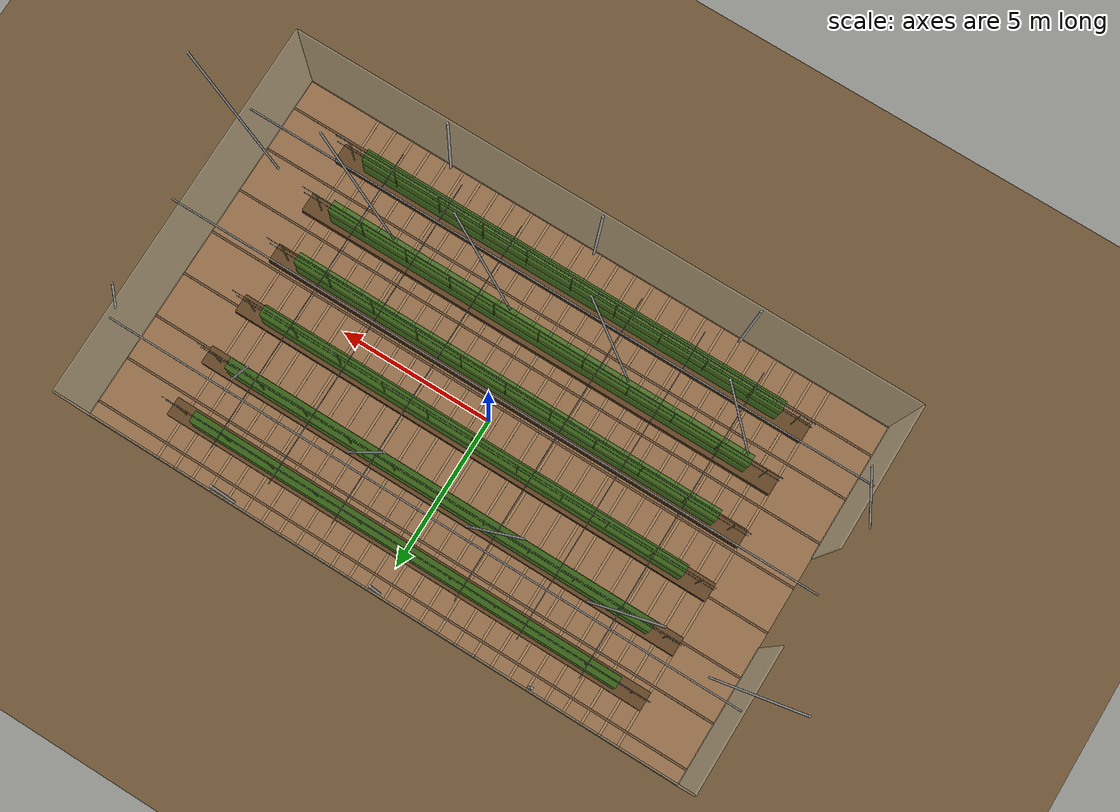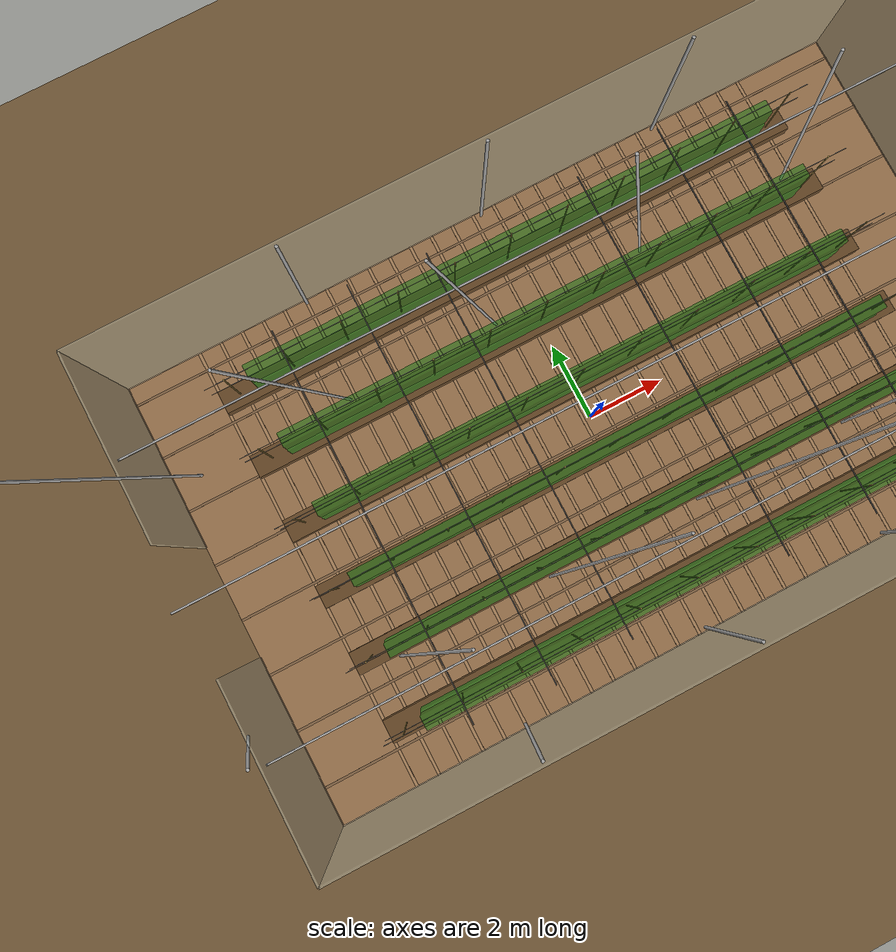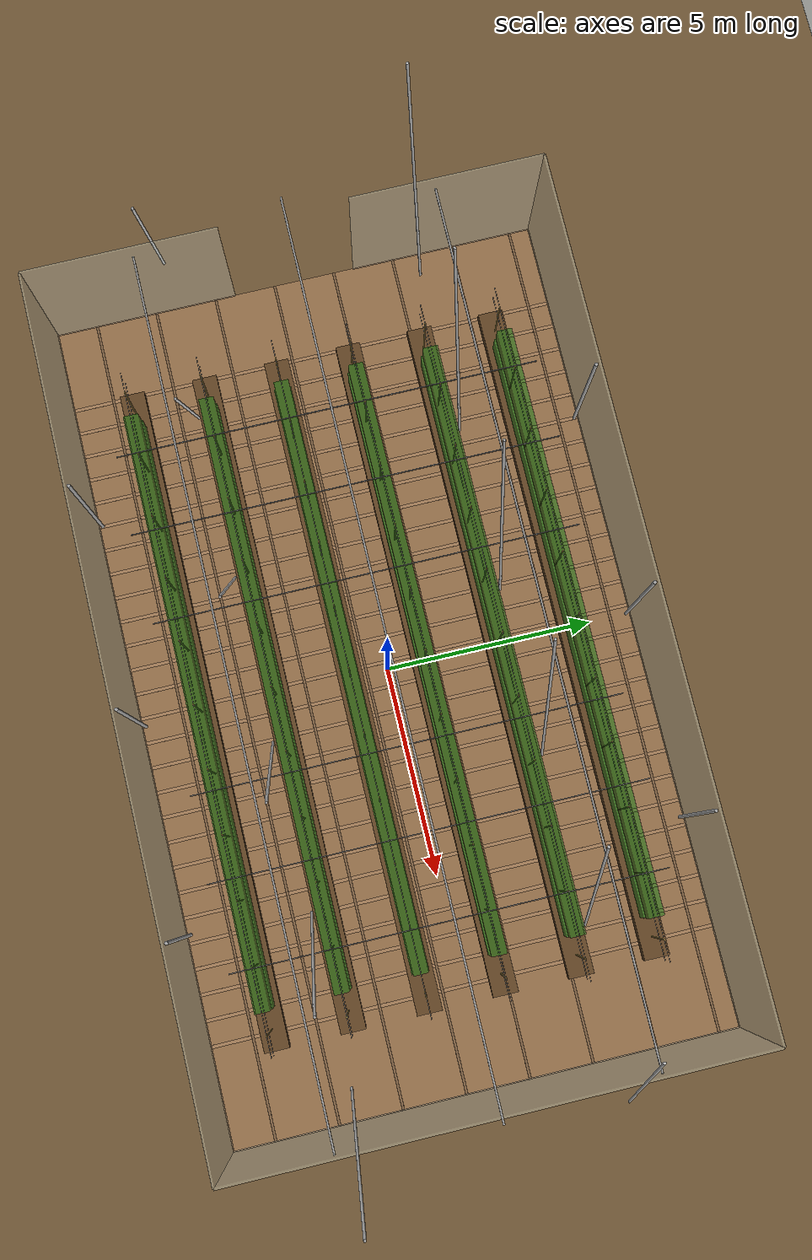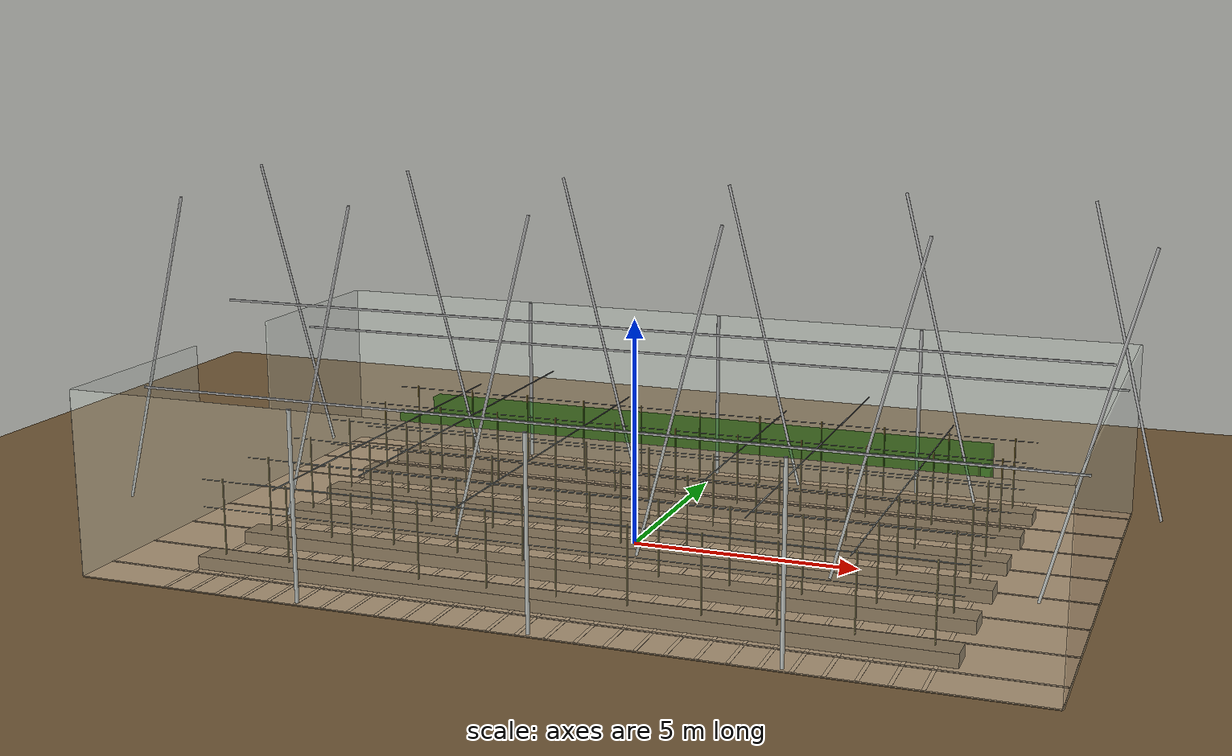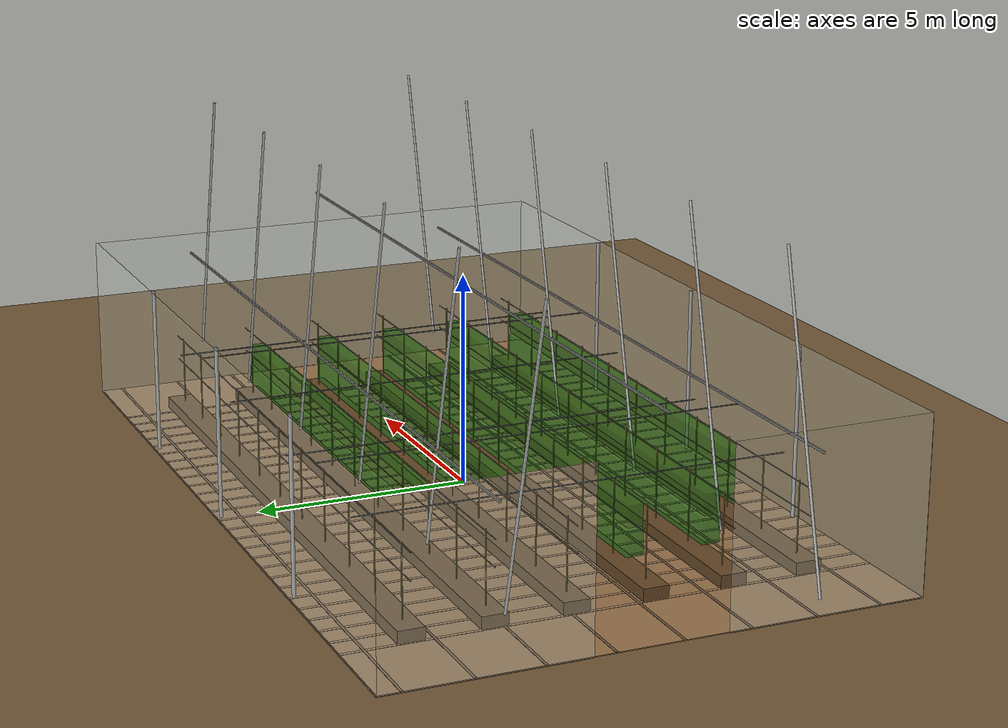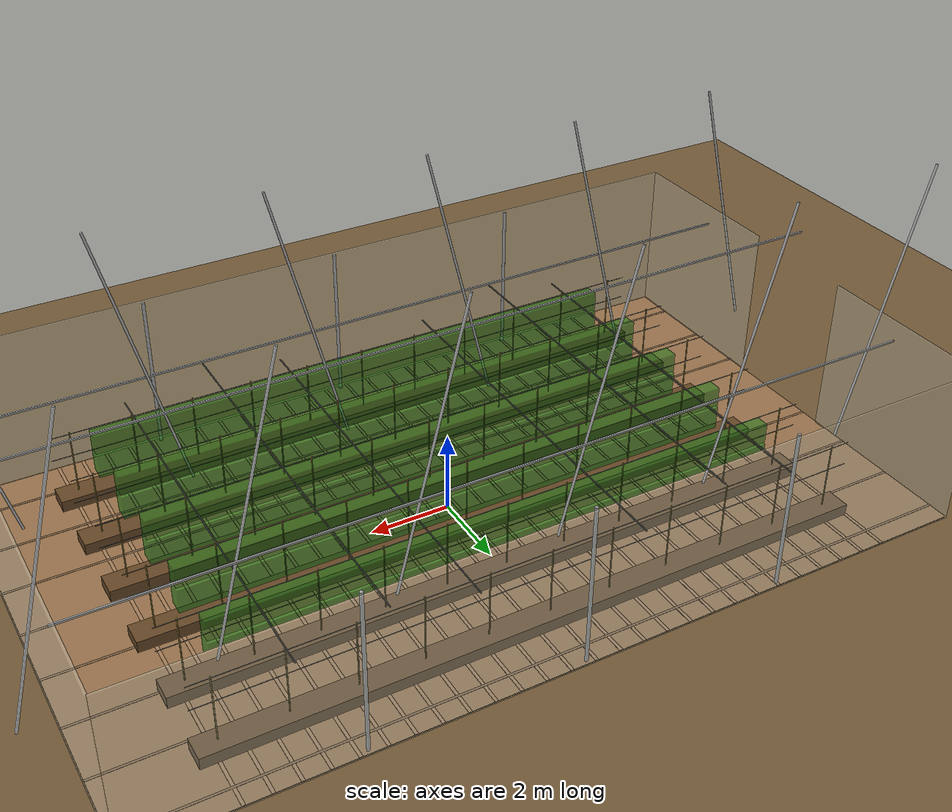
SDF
<?xml version="1.0" ?>
<!--
  黄瓜大棚仿真世界
  包含: 1个大棚(20m×12m) + 6行黄瓜种植行 (行间距1.8m)
  ★ 第十三次缩小: 40×16→20×12, 10行→6行
  GPS拒止环境 - 用于测试 Fast-LIO2 SLAM
-->
<sdf version="1.6">
  <world name="greenhouse_world">

    <!-- 物理引擎配置 (PX4标准) -->
    <physics name="default_physics" default="0" type="ode">
      <max_step_size>0.004</max_step_size>
      <real_time_factor>1</real_time_factor>
      <real_time_update_rate>250</real_time_update_rate>
      <ode>
        <solver><type>quick</type><iters>10</iters><sor>1.3</sor><use_dynamic_moi_rescaling>0</use_dynamic_moi_rescaling></solver>
        <constraints><cfm>0</cfm><erp>0.2</erp><contact_max_correcting_vel>100</contact_max_correcting_vel><contact_surface_layer>0.001</contact_surface_layer></constraints>
      </ode>
    </physics>

    <!-- 光照 -->
    <light type="directional" name="sun">
      <cast_shadows>true</cast_shadows>
      <pose>0 0 10 0 0 0</pose>
      <diffuse>0.8 0.8 0.8 1</diffuse>
      <specular>0.2 0.2 0.2 1</specular>
      <attenuation><range>1000</range><constant>0.9</constant><linear>0.01</linear><quadratic>0.001</quadratic></attenuation>
      <direction>-0.5 0.1 -0.9</direction>
    </light>

    <!-- 地面 -->
    <model name="ground_plane">
      <static>true</static>
      <link name="link">
        <collision name="collision">
          <geometry><plane><normal>0 0 1</normal><size>100 100</size></plane></geometry>
          <surface><friction><ode><mu>100</mu><mu2>50</mu2></ode></friction></surface>
        </collision>
        <visual name="visual">
          <geometry><plane><normal>0 0 1</normal><size>100 100</size></plane></geometry>
          <material><ambient>0.35 0.28 0.18 1</ambient><diffuse>0.45 0.35 0.22 1</diffuse></material>
        </visual>
      </link>
    </model>

    <!-- 大棚主体 (40m x 16m) -->
    <include>
      <uri>model://greenhouse</uri>
      <pose>0 0 0 0 0 0</pose>
      <name>greenhouse_main</name>
    </include>

    <!-- 黄瓜种植行 (6行, 行间距1.8m, 居中放置) -->
    <!-- y范围: -4.5 到 +4.5, 居中分布 -->
    <include><uri>model://cucumber_row</uri><pose>0 -4.5 0 0 0 0</pose><name>row_1</name></include>
    <include><uri>model://cucumber_row</uri><pose>0 -2.7 0 0 0 0</pose><name>row_2</name></include>
    <include><uri>model://cucumber_row</uri><pose>0 -0.9 0 0 0 0</pose><name>row_3</name></include>
    <include><uri>model://cucumber_row</uri><pose>0 0.9 0 0 0 0</pose><name>row_4</name></include>
    <include><uri>model://cucumber_row</uri><pose>0 2.7 0 0 0 0</pose><name>row_5</name></include>
    <include><uri>model://cucumber_row</uri><pose>0 4.5 0 0 0 0</pose><name>row_6</name></include>

  </world>
</sdf>

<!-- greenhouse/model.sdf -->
<!--
  黄瓜大棚模型 (Cucumber Greenhouse)
  尺寸: 长20m x 宽12m x 高5m (拱形顶)
  ★ 第十三次缩小: 40×16→20×12, 方便测试
  包含: 棚架结构、横梁、模拟藤蔓线
  所有部件都有碰撞体积用于避障测试
-->
<sdf version="1.6">
  <model name="greenhouse">
    <static>true</static>

    <!-- 地基/地面 (泥土色+纹理条纹, 增强光流效果) -->
    <link name="floor">
      <pose>0 0 0.01 0 0 0</pose>
      <collision name="floor_col"><geometry><box><size>20 12 0.02</size></box></geometry></collision>
      <visual name="floor_vis"><geometry><box><size>20 12 0.02</size></box></geometry>
        <material>
          <ambient>0.5 0.4 0.3 1</ambient>
          <diffuse>0.6 0.45 0.3 1</diffuse>
        </material>
      </visual>
    </link>

    <!-- ★ 第十五次新增: 泥土地面纹路 (给光流传感器提供特征) -->
    <!-- 横向泥土垄 (宽8cm, 间隔0.6m, 模拟种植行泥土沟壑) -->
    <link name="ds1"><pose>-8.0 0 0.022 0 0 0</pose><visual name="v"><geometry><box><size>0.08 12 0.006</size></box></geometry><material><ambient>0.55 0.42 0.28 1</ambient><diffuse>0.65 0.5 0.35 1</diffuse></material></visual></link>
    <link name="ds2"><pose>-7.4 0 0.022 0 0 0</pose><visual name="v"><geometry><box><size>0.08 12 0.006</size></box></geometry><material><ambient>0.55 0.42 0.28 1</ambient><diffuse>0.65 0.5 0.35 1</diffuse></material></visual></link>
    <link name="ds3"><pose>-6.8 0 0.022 0 0 0</pose><visual name="v"><geometry><box><size>0.08 12 0.006</size></box></geometry><material><ambient>0.55 0.42 0.28 1</ambient><diffuse>0.65 0.5 0.35 1</diffuse></material></visual></link>
    <link name="ds4"><pose>-6.2 0 0.022 0 0 0</pose><visual name="v"><geometry><box><size>0.08 12 0.006</size></box></geometry><material><ambient>0.55 0.42 0.28 1</ambient><diffuse>0.65 0.5 0.35 1</diffuse></material></visual></link>
    <link name="ds5"><pose>-5.6 0 0.022 0 0 0</pose><visual name="v"><geometry><box><size>0.08 12 0.006</size></box></geometry><material><ambient>0.55 0.42 0.28 1</ambient><diffuse>0.65 0.5 0.35 1</diffuse></material></visual></link>
    <link name="ds6"><pose>-5.0 0 0.022 0 0 0</pose><visual name="v"><geometry><box><size>0.08 12 0.006</size></box></geometry><material><ambient>0.55 0.42 0.28 1</ambient><diffuse>0.65 0.5 0.35 1</diffuse></material></visual></link>
    <link name="ds7"><pose>-4.4 0 0.022 0 0 0</pose><visual name="v"><geometry><box><size>0.08 12 0.006</size></box></geometry><material><ambient>0.55 0.42 0.28 1</ambient><diffuse>0.65 0.5 0.35 1</diffuse></material></visual></link>
    <link name="ds8"><pose>-3.8 0 0.022 0 0 0</pose><visual name="v"><geometry><box><size>0.08 12 0.006</size></box></geometry><material><ambient>0.55 0.42 0.28 1</ambient><diffuse>0.65 0.5 0.35 1</diffuse></material></visual></link>
    <link name="ds9"><pose>-3.2 0 0.022 0 0 0</pose><visual name="v"><geometry><box><size>0.08 12 0.006</size></box></geometry><material><ambient>0.55 0.42 0.28 1</ambient><diffuse>0.65 0.5 0.35 1</diffuse></material></visual></link>
    <link name="ds10"><pose>-2.6 0 0.022 0 0 0</pose><visual name="v"><geometry><box><size>0.08 12 0.006</size></box></geometry><material><ambient>0.55 0.42 0.28 1</ambient><diffuse>0.65 0.5 0.35 1</diffuse></material></visual></link>
    <link name="ds11"><pose>-2.0 0 0.022 0 0 0</pose><visual name="v"><geometry><box><size>0.08 12 0.006</size></box></geometry><material><ambient>0.55 0.42 0.28 1</ambient><diffuse>0.65 0.5 0.35 1</diffuse></material></visual></link>
    <link name="ds12"><pose>-1.4 0 0.022 0 0 0</pose><visual name="v"><geometry><box><size>0.08 12 0.006</size></box></geometry><material><ambient>0.55 0.42 0.28 1</ambient><diffuse>0.65 0.5 0.35 1</diffuse></material></visual></link>
    <link name="ds13"><pose>-0.8 0 0.022 0 0 0</pose><visual name="v"><geometry><box><size>0.08 12 0.006</size></box></geometry><material><ambient>0.55 0.42 0.28 1</ambient><diffuse>0.65 0.5 0.35 1</diffuse></material></visual></link>
    <link name="ds14"><pose>-0.2 0 0.022 0 0 0</pose><visual name="v"><geometry><box><size>0.08 12 0.006</size></box></geometry><material><ambient>0.55 0.42 0.28 1</ambient><diffuse>0.65 0.5 0.35 1</diffuse></material></visual></link>
    <link name="ds15"><pose>0.4 0 0.022 0 0 0</pose><visual name="v"><geometry><box><size>0.08 12 0.006</size></box></geometry><material><ambient>0.55 0.42 0.28 1</ambient><diffuse>0.65 0.5 0.35 1</diffuse></material></visual></link>
    <link name="ds16"><pose>1.0 0 0.022 0 0 0</pose><visual name="v"><geometry><box><size>0.08 12 0.006</size></box></geometry><material><ambient>0.55 0.42 0.28 1</ambient><diffuse>0.65 0.5 0.35 1</diffuse></material></visual></link>
    <link name="ds17"><pose>1.6 0 0.022 0 0 0</pose><visual name="v"><geometry><box><size>0.08 12 0.006</size></box></geometry><material><ambient>0.55 0.42 0.28 1</ambient><diffuse>0.65 0.5 0.35 1</diffuse></material></visual></link>
    <link name="ds18"><pose>2.2 0 0.022 0 0 0</pose><visual name="v"><geometry><box><size>0.08 12 0.006</size></box></geometry><material><ambient>0.55 0.42 0.28 1</ambient><diffuse>0.65 0.5 0.35 1</diffuse></material></visual></link>
    <link name="ds19"><pose>2.8 0 0.022 0 0 0</pose><visual name="v"><geometry><box><size>0.08 12 0.006</size></box></geometry><material><ambient>0.55 0.42 0.28 1</ambient><diffuse>0.65 0.5 0.35 1</diffuse></material></visual></link>
    <link name="ds20"><pose>3.4 0 0.022 0 0 0</pose><visual name="v"><geometry><box><size>0.08 12 0.006</size></box></geometry><material><ambient>0.55 0.42 0.28 1</ambient><diffuse>0.65 0.5 0.35 1</diffuse></material></visual></link>
    <link name="ds21"><pose>4.0 0 0.022 0 0 0</pose><visual name="v"><geometry><box><size>0.08 12 0.006</size></box></geometry><material><ambient>0.55 0.42 0.28 1</ambient><diffuse>0.65 0.5 0.35 1</diffuse></material></visual></link>
    <link name="ds22"><pose>4.6 0 0.022 0 0 0</pose><visual name="v"><geometry><box><size>0.08 12 0.006</size></box></geometry><material><ambient>0.55 0.42 0.28 1</ambient><diffuse>0.65 0.5 0.35 1</diffuse></material></visual></link>
    <link name="ds23"><pose>5.2 0 0.022 0 0 0</pose><visual name="v"><geometry><box><size>0.08 12 0.006</size></box></geometry><material><ambient>0.55 0.42 0.28 1</ambient><diffuse>0.65 0.5 0.35 1</diffuse></material></visual></link>
    <link name="ds24"><pose>5.8 0 0.022 0 0 0</pose><visual name="v"><geometry><box><size>0.08 12 0.006</size></box></geometry><material><ambient>0.55 0.42 0.28 1</ambient><diffuse>0.65 0.5 0.35 1</diffuse></material></visual></link>
    <link name="ds25"><pose>6.4 0 0.022 0 0 0</pose><visual name="v"><geometry><box><size>0.08 12 0.006</size></box></geometry><material><ambient>0.55 0.42 0.28 1</ambient><diffuse>0.65 0.5 0.35 1</diffuse></material></visual></link>
    <link name="ds26"><pose>7.0 0 0.022 0 0 0</pose><visual name="v"><geometry><box><size>0.08 12 0.006</size></box></geometry><material><ambient>0.55 0.42 0.28 1</ambient><diffuse>0.65 0.5 0.35 1</diffuse></material></visual></link>
    <link name="ds27"><pose>7.6 0 0.022 0 0 0</pose><visual name="v"><geometry><box><size>0.08 12 0.006</size></box></geometry><material><ambient>0.55 0.42 0.28 1</ambient><diffuse>0.65 0.5 0.35 1</diffuse></material></visual></link>
    <!-- 纵向深色沟 (与横向交叉, 形成泥土网格纹理) -->
    <link name="dc1"><pose>0 -5.0 0.024 0 0 0</pose><visual name="v"><geometry><box><size>20 0.06 0.005</size></box></geometry><material><ambient>0.42 0.32 0.22 1</ambient><diffuse>0.5 0.38 0.26 1</diffuse></material></visual></link>
    <link name="dc2"><pose>0 -3.5 0.024 0 0 0</pose><visual name="v"><geometry><box><size>20 0.06 0.005</size></box></geometry><material><ambient>0.42 0.32 0.22 1</ambient><diffuse>0.5 0.38 0.26 1</diffuse></material></visual></link>
    <link name="dc3"><pose>0 -2.0 0.024 0 0 0</pose><visual name="v"><geometry><box><size>20 0.06 0.005</size></box></geometry><material><ambient>0.42 0.32 0.22 1</ambient><diffuse>0.5 0.38 0.26 1</diffuse></material></visual></link>
    <link name="dc4"><pose>0 -0.5 0.024 0 0 0</pose><visual name="v"><geometry><box><size>20 0.06 0.005</size></box></geometry><material><ambient>0.42 0.32 0.22 1</ambient><diffuse>0.5 0.38 0.26 1</diffuse></material></visual></link>
    <link name="dc5"><pose>0 1.0 0.024 0 0 0</pose><visual name="v"><geometry><box><size>20 0.06 0.005</size></box></geometry><material><ambient>0.42 0.32 0.22 1</ambient><diffuse>0.5 0.38 0.26 1</diffuse></material></visual></link>
    <link name="dc6"><pose>0 2.5 0.024 0 0 0</pose><visual name="v"><geometry><box><size>20 0.06 0.005</size></box></geometry><material><ambient>0.42 0.32 0.22 1</ambient><diffuse>0.5 0.38 0.26 1</diffuse></material></visual></link>
    <link name="dc7"><pose>0 4.0 0.024 0 0 0</pose><visual name="v"><geometry><box><size>20 0.06 0.005</size></box></geometry><material><ambient>0.42 0.32 0.22 1</ambient><diffuse>0.5 0.38 0.26 1</diffuse></material></visual></link>
    <link name="dc8"><pose>0 5.5 0.024 0 0 0</pose><visual name="v"><geometry><box><size>20 0.06 0.005</size></box></geometry><material><ambient>0.42 0.32 0.22 1</ambient><diffuse>0.5 0.38 0.26 1</diffuse></material></visual></link>

    <!-- 左侧墙壁 (y=-6) -->
    <link name="wall_left">
      <pose>0 -6 2.0 0 0 0</pose>
      <collision name="col"><geometry><box><size>20 0.05 4.0</size></box></geometry></collision>
      <visual name="vis"><geometry><box><size>20 0.05 4.0</size></box></geometry>
        <material><ambient>0.8 0.85 0.8 0.3</ambient><diffuse>0.9 0.95 0.9 0.3</diffuse></material>
        <transparency>0.6</transparency>
      </visual>
    </link>

    <!-- 右侧墙壁 (y=6) -->
    <link name="wall_right">
      <pose>0 6 2.0 0 0 0</pose>
      <collision name="col"><geometry><box><size>20 0.05 4.0</size></box></geometry></collision>
      <visual name="vis"><geometry><box><size>20 0.05 4.0</size></box></geometry>
        <material><ambient>0.8 0.85 0.8 0.3</ambient><diffuse>0.9 0.95 0.9 0.3</diffuse></material>
        <transparency>0.6</transparency>
      </visual>
    </link>

    <!-- 前端墙壁 (x=-10, 留门洞 3m宽) -->
    <link name="wall_front_l">
      <pose>-10 -3.75 2.0 0 0 0</pose>
      <collision name="col"><geometry><box><size>0.05 4.5 4.0</size></box></geometry></collision>
      <visual name="vis"><geometry><box><size>0.05 4.5 4.0</size></box></geometry>
        <material><ambient>0.8 0.85 0.8 0.3</ambient><diffuse>0.9 0.95 0.9 0.3</diffuse></material>
        <transparency>0.6</transparency>
      </visual>
    </link>
    <link name="wall_front_r">
      <pose>-10 3.75 2.0 0 0 0</pose>
      <collision name="col"><geometry><box><size>0.05 4.5 4.0</size></box></geometry></collision>
      <visual name="vis"><geometry><box><size>0.05 4.5 4.0</size></box></geometry>
        <material><ambient>0.8 0.85 0.8 0.3</ambient><diffuse>0.9 0.95 0.9 0.3</diffuse></material>
        <transparency>0.6</transparency>
      </visual>
    </link>

    <!-- 后端墙壁 (x=10) -->
    <link name="wall_back">
      <pose>10 0 2.0 0 0 0</pose>
      <collision name="col"><geometry><box><size>0.05 12.0 4.0</size></box></geometry></collision>
      <visual name="vis"><geometry><box><size>0.05 12.0 4.0</size></box></geometry>
        <material><ambient>0.8 0.85 0.8 0.3</ambient><diffuse>0.9 0.95 0.9 0.3</diffuse></material>
        <transparency>0.6</transparency>
      </visual>
    </link>

    <!-- 拱形屋顶骨架 (每隔4m, 共6对) -->
    <link name="arch_m10_l"><pose>-10 -3 4.2 0 0.25 0</pose><collision name="c"><geometry><cylinder><radius>0.03</radius><length>7.0</length></cylinder></geometry></collision><visual name="v"><geometry><cylinder><radius>0.03</radius><length>7.0</length></cylinder></geometry><material><ambient>0.6 0.6 0.6 1</ambient><diffuse>0.7 0.7 0.7 1</diffuse></material></visual></link>
    <link name="arch_m10_r"><pose>-10 3 4.2 0 -0.25 0</pose><collision name="c"><geometry><cylinder><radius>0.03</radius><length>7.0</length></cylinder></geometry></collision><visual name="v"><geometry><cylinder><radius>0.03</radius><length>7.0</length></cylinder></geometry><material><ambient>0.6 0.6 0.6 1</ambient><diffuse>0.7 0.7 0.7 1</diffuse></material></visual></link>

    <link name="arch_m6_l"><pose>-6 -3 4.2 0 0.25 0</pose><collision name="c"><geometry><cylinder><radius>0.03</radius><length>7.0</length></cylinder></geometry></collision><visual name="v"><geometry><cylinder><radius>0.03</radius><length>7.0</length></cylinder></geometry><material><ambient>0.6 0.6 0.6 1</ambient><diffuse>0.7 0.7 0.7 1</diffuse></material></visual></link>
    <link name="arch_m6_r"><pose>-6 3 4.2 0 -0.25 0</pose><collision name="c"><geometry><cylinder><radius>0.03</radius><length>7.0</length></cylinder></geometry></collision><visual name="v"><geometry><cylinder><radius>0.03</radius><length>7.0</length></cylinder></geometry><material><ambient>0.6 0.6 0.6 1</ambient><diffuse>0.7 0.7 0.7 1</diffuse></material></visual></link>

    <link name="arch_m2_l"><pose>-2 -3 4.2 0 0.25 0</pose><collision name="c"><geometry><cylinder><radius>0.03</radius><length>7.0</length></cylinder></geometry></collision><visual name="v"><geometry><cylinder><radius>0.03</radius><length>7.0</length></cylinder></geometry><material><ambient>0.6 0.6 0.6 1</ambient><diffuse>0.7 0.7 0.7 1</diffuse></material></visual></link>
    <link name="arch_m2_r"><pose>-2 3 4.2 0 -0.25 0</pose><collision name="c"><geometry><cylinder><radius>0.03</radius><length>7.0</length></cylinder></geometry></collision><visual name="v"><geometry><cylinder><radius>0.03</radius><length>7.0</length></cylinder></geometry><material><ambient>0.6 0.6 0.6 1</ambient><diffuse>0.7 0.7 0.7 1</diffuse></material></visual></link>

    <link name="arch_2_l"><pose>2 -3 4.2 0 0.25 0</pose><collision name="c"><geometry><cylinder><radius>0.03</radius><length>7.0</length></cylinder></geometry></collision><visual name="v"><geometry><cylinder><radius>0.03</radius><length>7.0</length></cylinder></geometry><material><ambient>0.6 0.6 0.6 1</ambient><diffuse>0.7 0.7 0.7 1</diffuse></material></visual></link>
    <link name="arch_2_r"><pose>2 3 4.2 0 -0.25 0</pose><collision name="c"><geometry><cylinder><radius>0.03</radius><length>7.0</length></cylinder></geometry></collision><visual name="v"><geometry><cylinder><radius>0.03</radius><length>7.0</length></cylinder></geometry><material><ambient>0.6 0.6 0.6 1</ambient><diffuse>0.7 0.7 0.7 1</diffuse></material></visual></link>

    <link name="arch_6_l"><pose>6 -3 4.2 0 0.25 0</pose><collision name="c"><geometry><cylinder><radius>0.03</radius><length>7.0</length></cylinder></geometry></collision><visual name="v"><geometry><cylinder><radius>0.03</radius><length>7.0</length></cylinder></geometry><material><ambient>0.6 0.6 0.6 1</ambient><diffuse>0.7 0.7 0.7 1</diffuse></material></visual></link>
    <link name="arch_6_r"><pose>6 3 4.2 0 -0.25 0</pose><collision name="c"><geometry><cylinder><radius>0.03</radius><length>7.0</length></cylinder></geometry></collision><visual name="v"><geometry><cylinder><radius>0.03</radius><length>7.0</length></cylinder></geometry><material><ambient>0.6 0.6 0.6 1</ambient><diffuse>0.7 0.7 0.7 1</diffuse></material></visual></link>

    <link name="arch_10_l"><pose>10 -3 4.2 0 0.25 0</pose><collision name="c"><geometry><cylinder><radius>0.03</radius><length>7.0</length></cylinder></geometry></collision><visual name="v"><geometry><cylinder><radius>0.03</radius><length>7.0</length></cylinder></geometry><material><ambient>0.6 0.6 0.6 1</ambient><diffuse>0.7 0.7 0.7 1</diffuse></material></visual></link>
    <link name="arch_10_r"><pose>10 3 4.2 0 -0.25 0</pose><collision name="c"><geometry><cylinder><radius>0.03</radius><length>7.0</length></cylinder></geometry></collision><visual name="v"><geometry><cylinder><radius>0.03</radius><length>7.0</length></cylinder></geometry><material><ambient>0.6 0.6 0.6 1</ambient><diffuse>0.7 0.7 0.7 1</diffuse></material></visual></link>

    <!-- 纵向横梁 -->
    <link name="ridge_beam"><pose>0 0 4.8 0 0 0</pose><collision name="c"><geometry><box><size>20 0.04 0.04</size></box></geometry></collision><visual name="v"><geometry><box><size>20 0.04 0.04</size></box></geometry><material><ambient>0.5 0.5 0.5 1</ambient><diffuse>0.65 0.65 0.65 1</diffuse></material></visual></link>
    <link name="purlin_l"><pose>0 -3.5 3.5 0 0 0</pose><collision name="c"><geometry><box><size>20 0.04 0.04</size></box></geometry></collision><visual name="v"><geometry><box><size>20 0.04 0.04</size></box></geometry><material><ambient>0.5 0.5 0.5 1</ambient><diffuse>0.65 0.65 0.65 1</diffuse></material></visual></link>
    <link name="purlin_r"><pose>0 3.5 3.5 0 0 0</pose><collision name="c"><geometry><box><size>20 0.04 0.04</size></box></geometry></collision><visual name="v"><geometry><box><size>20 0.04 0.04</size></box></geometry><material><ambient>0.5 0.5 0.5 1</ambient><diffuse>0.65 0.65 0.65 1</diffuse></material></visual></link>

    <!-- 竖直支撑柱 (每隔5m, 左右各一) -->
    <link name="pillar_m5_l"><pose>-5 -5.9 2.0 0 0 0</pose><collision name="c"><geometry><cylinder><radius>0.04</radius><length>4.0</length></cylinder></geometry></collision><visual name="v"><geometry><cylinder><radius>0.04</radius><length>4.0</length></cylinder></geometry><material><ambient>0.5 0.5 0.5 1</ambient><diffuse>0.65 0.65 0.65 1</diffuse></material></visual></link>
    <link name="pillar_m5_r"><pose>-5 5.9 2.0 0 0 0</pose><collision name="c"><geometry><cylinder><radius>0.04</radius><length>4.0</length></cylinder></geometry></collision><visual name="v"><geometry><cylinder><radius>0.04</radius><length>4.0</length></cylinder></geometry><material><ambient>0.5 0.5 0.5 1</ambient><diffuse>0.65 0.65 0.65 1</diffuse></material></visual></link>
    <link name="pillar_0_l"><pose>0 -5.9 2.0 0 0 0</pose><collision name="c"><geometry><cylinder><radius>0.04</radius><length>4.0</length></cylinder></geometry></collision><visual name="v"><geometry><cylinder><radius>0.04</radius><length>4.0</length></cylinder></geometry><material><ambient>0.5 0.5 0.5 1</ambient><diffuse>0.65 0.65 0.65 1</diffuse></material></visual></link>
    <link name="pillar_0_r"><pose>0 5.9 2.0 0 0 0</pose><collision name="c"><geometry><cylinder><radius>0.04</radius><length>4.0</length></cylinder></geometry></collision><visual name="v"><geometry><cylinder><radius>0.04</radius><length>4.0</length></cylinder></geometry><material><ambient>0.5 0.5 0.5 1</ambient><diffuse>0.65 0.65 0.65 1</diffuse></material></visual></link>
    <link name="pillar_5_l"><pose>5 -5.9 2.0 0 0 0</pose><collision name="c"><geometry><cylinder><radius>0.04</radius><length>4.0</length></cylinder></geometry></collision><visual name="v"><geometry><cylinder><radius>0.04</radius><length>4.0</length></cylinder></geometry><material><ambient>0.5 0.5 0.5 1</ambient><diffuse>0.65 0.65 0.65 1</diffuse></material></visual></link>
    <link name="pillar_5_r"><pose>5 5.9 2.0 0 0 0</pose><collision name="c"><geometry><cylinder><radius>0.04</radius><length>4.0</length></cylinder></geometry></collision><visual name="v"><geometry><cylinder><radius>0.04</radius><length>4.0</length></cylinder></geometry><material><ambient>0.5 0.5 0.5 1</ambient><diffuse>0.65 0.65 0.65 1</diffuse></material></visual></link>

    <!-- 藤蔓牵引线 (横向遮挡障碍物) -->
    <link name="wire_1"><pose>-6 0 2.0 0 0 0</pose><collision name="c"><geometry><box><size>0.02 10.0 0.02</size></box></geometry></collision><visual name="v"><geometry><box><size>0.02 10.0 0.02</size></box></geometry><material><ambient>0.3 0.3 0.3 1</ambient><diffuse>0.4 0.4 0.4 1</diffuse></material></visual></link>
    <link name="wire_2"><pose>-2 0 2.0 0 0 0</pose><collision name="c"><geometry><box><size>0.02 10.0 0.02</size></box></geometry></collision><visual name="v"><geometry><box><size>0.02 10.0 0.02</size></box></geometry><material><ambient>0.3 0.3 0.3 1</ambient><diffuse>0.4 0.4 0.4 1</diffuse></material></visual></link>
    <link name="wire_3"><pose>2 0 2.0 0 0 0</pose><collision name="c"><geometry><box><size>0.02 10.0 0.02</size></box></geometry></collision><visual name="v"><geometry><box><size>0.02 10.0 0.02</size></box></geometry><material><ambient>0.3 0.3 0.3 1</ambient><diffuse>0.4 0.4 0.4 1</diffuse></material></visual></link>
    <link name="wire_4"><pose>6 0 2.0 0 0 0</pose><collision name="c"><geometry><box><size>0.02 10.0 0.02</size></box></geometry></collision><visual name="v"><geometry><box><size>0.02 10.0 0.02</size></box></geometry><material><ambient>0.3 0.3 0.3 1</ambient><diffuse>0.4 0.4 0.4 1</diffuse></material></visual></link>
    <link name="wire_h1"><pose>-4 0 2.5 0 0 0</pose><collision name="c"><geometry><box><size>0.02 10.0 0.02</size></box></geometry></collision><visual name="v"><geometry><box><size>0.02 10.0 0.02</size></box></geometry><material><ambient>0.3 0.3 0.3 1</ambient><diffuse>0.4 0.4 0.4 1</diffuse></material></visual></link>
    <link name="wire_h2"><pose>4 0 2.5 0 0 0</pose><collision name="c"><geometry><box><size>0.02 10.0 0.02</size></box></geometry></collision><visual name="v"><geometry><box><size>0.02 10.0 0.02</size></box></geometry><material><ambient>0.3 0.3 0.3 1</ambient><diffuse>0.4 0.4 0.4 1</diffuse></material></visual></link>

  </model>
</sdf>

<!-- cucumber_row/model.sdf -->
<!--
  黄瓜种植行模型 (Cucumber Row)
  长度: 16m (沿X轴), 高1.8m
  ★ 第十三次缩小: 36m→16m, 配合缩小后的大棚(20×12m)
  包含: 竹竿支撑 + 横向牵引线 + 叶片遮挡块
-->
<sdf version="1.6">
  <model name="cucumber_row">
    <static>true</static>

    <!-- 底部土垄 -->
    <link name="soil_ridge">
      <pose>0 0 0.15 0 0 0</pose>
      <collision name="c"><geometry><box><size>16 0.6 0.3</size></box></geometry></collision>
      <visual name="v"><geometry><box><size>16 0.6 0.3</size></box></geometry>
        <material><ambient>0.3 0.2 0.1 1</ambient><diffuse>0.4 0.28 0.15 1</diffuse></material>
      </visual>
    </link>

    <!-- 竹竿支撑 (每隔1.5m, 共11根, x从-7.5到7.5) -->
    <link name="stake_0"><pose>-7.5 0 1.05 0 0 0</pose><collision name="c"><geometry><cylinder><radius>0.015</radius><length>1.8</length></cylinder></geometry></collision><visual name="v"><geometry><cylinder><radius>0.015</radius><length>1.8</length></cylinder></geometry><material><ambient>0.6 0.5 0.2 1</ambient><diffuse>0.7 0.6 0.3 1</diffuse></material></visual></link>
    <link name="stake_1"><pose>-6.0 0 1.05 0 0 0</pose><collision name="c"><geometry><cylinder><radius>0.015</radius><length>1.8</length></cylinder></geometry></collision><visual name="v"><geometry><cylinder><radius>0.015</radius><length>1.8</length></cylinder></geometry><material><ambient>0.6 0.5 0.2 1</ambient><diffuse>0.7 0.6 0.3 1</diffuse></material></visual></link>
    <link name="stake_2"><pose>-4.5 0 1.05 0 0 0</pose><collision name="c"><geometry><cylinder><radius>0.015</radius><length>1.8</length></cylinder></geometry></collision><visual name="v"><geometry><cylinder><radius>0.015</radius><length>1.8</length></cylinder></geometry><material><ambient>0.6 0.5 0.2 1</ambient><diffuse>0.7 0.6 0.3 1</diffuse></material></visual></link>
    <link name="stake_3"><pose>-3.0 0 1.05 0 0 0</pose><collision name="c"><geometry><cylinder><radius>0.015</radius><length>1.8</length></cylinder></geometry></collision><visual name="v"><geometry><cylinder><radius>0.015</radius><length>1.8</length></cylinder></geometry><material><ambient>0.6 0.5 0.2 1</ambient><diffuse>0.7 0.6 0.3 1</diffuse></material></visual></link>
    <link name="stake_4"><pose>-1.5 0 1.05 0 0 0</pose><collision name="c"><geometry><cylinder><radius>0.015</radius><length>1.8</length></cylinder></geometry></collision><visual name="v"><geometry><cylinder><radius>0.015</radius><length>1.8</length></cylinder></geometry><material><ambient>0.6 0.5 0.2 1</ambient><diffuse>0.7 0.6 0.3 1</diffuse></material></visual></link>
    <link name="stake_5"><pose>0 0 1.05 0 0 0</pose><collision name="c"><geometry><cylinder><radius>0.015</radius><length>1.8</length></cylinder></geometry></collision><visual name="v"><geometry><cylinder><radius>0.015</radius><length>1.8</length></cylinder></geometry><material><ambient>0.6 0.5 0.2 1</ambient><diffuse>0.7 0.6 0.3 1</diffuse></material></visual></link>
    <link name="stake_6"><pose>1.5 0 1.05 0 0 0</pose><collision name="c"><geometry><cylinder><radius>0.015</radius><length>1.8</length></cylinder></geometry></collision><visual name="v"><geometry><cylinder><radius>0.015</radius><length>1.8</length></cylinder></geometry><material><ambient>0.6 0.5 0.2 1</ambient><diffuse>0.7 0.6 0.3 1</diffuse></material></visual></link>
    <link name="stake_7"><pose>3.0 0 1.05 0 0 0</pose><collision name="c"><geometry><cylinder><radius>0.015</radius><length>1.8</length></cylinder></geometry></collision><visual name="v"><geometry><cylinder><radius>0.015</radius><length>1.8</length></cylinder></geometry><material><ambient>0.6 0.5 0.2 1</ambient><diffuse>0.7 0.6 0.3 1</diffuse></material></visual></link>
    <link name="stake_8"><pose>4.5 0 1.05 0 0 0</pose><collision name="c"><geometry><cylinder><radius>0.015</radius><length>1.8</length></cylinder></geometry></collision><visual name="v"><geometry><cylinder><radius>0.015</radius><length>1.8</length></cylinder></geometry><material><ambient>0.6 0.5 0.2 1</ambient><diffuse>0.7 0.6 0.3 1</diffuse></material></visual></link>
    <link name="stake_9"><pose>6.0 0 1.05 0 0 0</pose><collision name="c"><geometry><cylinder><radius>0.015</radius><length>1.8</length></cylinder></geometry></collision><visual name="v"><geometry><cylinder><radius>0.015</radius><length>1.8</length></cylinder></geometry><material><ambient>0.6 0.5 0.2 1</ambient><diffuse>0.7 0.6 0.3 1</diffuse></material></visual></link>
    <link name="stake_10"><pose>7.5 0 1.05 0 0 0</pose><collision name="c"><geometry><cylinder><radius>0.015</radius><length>1.8</length></cylinder></geometry></collision><visual name="v"><geometry><cylinder><radius>0.015</radius><length>1.8</length></cylinder></geometry><material><ambient>0.6 0.5 0.2 1</ambient><diffuse>0.7 0.6 0.3 1</diffuse></material></visual></link>

    <!-- 上方横向牵引钢丝 -->
    <link name="top_wire"><pose>0 0 1.9 0 0 0</pose>
      <collision name="c"><geometry><box><size>16 0.01 0.01</size></box></geometry></collision>
      <visual name="v"><geometry><box><size>16 0.01 0.01</size></box></geometry><material><ambient>0.3 0.3 0.3 1</ambient><diffuse>0.4 0.4 0.4 1</diffuse></material></visual>
    </link>
    <link name="mid_wire"><pose>0 0 1.3 0 0 0</pose>
      <collision name="c"><geometry><box><size>16 0.01 0.01</size></box></geometry></collision>
      <visual name="v"><geometry><box><size>16 0.01 0.01</size></box></geometry><material><ambient>0.3 0.3 0.3 1</ambient><diffuse>0.4 0.4 0.4 1</diffuse></material></visual>
    </link>

    <!-- 叶片遮挡 -->
    <link name="foliage_low"><pose>0 0 0.9 0 0 0</pose>
      <collision name="c"><geometry><box><size>14 0.4 0.6</size></box></geometry></collision>
      <visual name="v"><geometry><box><size>14 0.4 0.6</size></box></geometry>
        <material><ambient>0.15 0.45 0.1 0.7</ambient><diffuse>0.2 0.55 0.15 0.7</diffuse></material>
        <transparency>0.3</transparency>
      </visual>
    </link>
    <link name="foliage_high"><pose>0 0 1.5 0 0 0</pose>
      <collision name="c"><geometry><box><size>14 0.35 0.5</size></box></geometry></collision>
      <visual name="v"><geometry><box><size>14 0.35 0.5</size></box></geometry>
        <material><ambient>0.1 0.4 0.08 0.6</ambient><diffuse>0.15 0.5 0.1 0.6</diffuse></material>
        <transparency>0.35</transparency>
      </visual>
    </link>

  </model>
</sdf>
